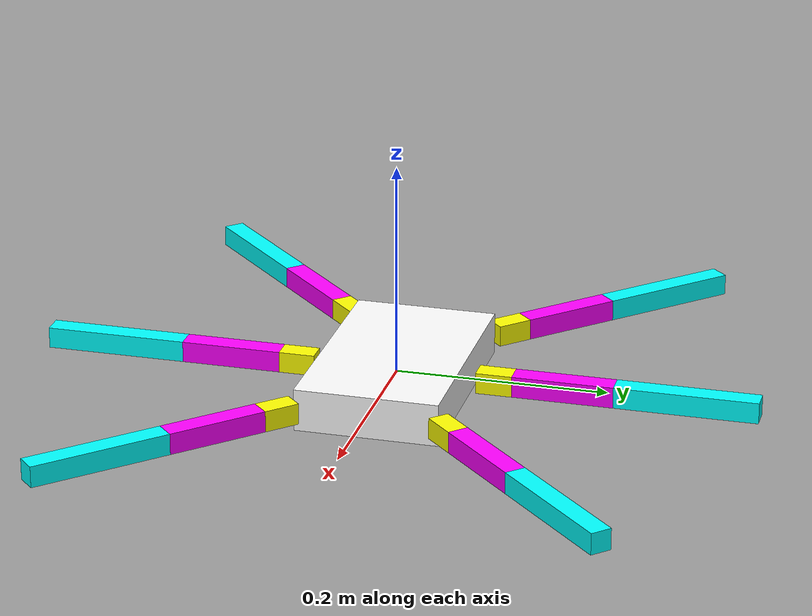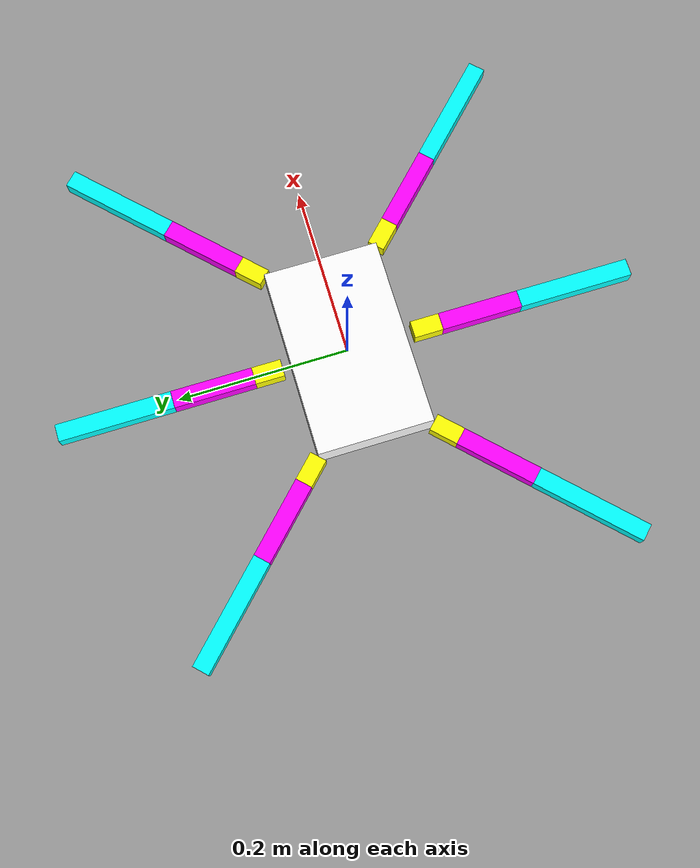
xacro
<?xml version="1.0"?>

<robot xmlns:xacro="http://www.ros.org/wiki/xacro" name="hexapod_leg">

<!-- Geometry and mass parameters -->
  <xacro:property name="body_width_s" value="0.135"/>
  <xacro:property name="body_width_b" value="0.155"/>
  <xacro:property name="body_length" value="0.220"/>
  <xacro:property name="body_heigth" value="0.04"/>
  <xacro:property name="L1_length" value="0.034"/>
  <xacro:property name="L2_length" value="0.095"/>
  <xacro:property name="L3_length" value="0.134"/>
  <xacro:property name="L_width" value="0.02"/>

  <xacro:property name="body_mass" value="0.3"/>
  <xacro:property name="L1_mass" value="0.158"/>
  <xacro:property name="L2_mass" value="0.034"/>
  <xacro:property name="L3_mass" value="0.102"/>

  <xacro:property name="max_angle" value="150"/>

  <xacro:macro name="default_inertial" params="mass">
    <inertial>
      <mass value="${mass}" />
      <inertia ixx="1.0" ixy="0.0" ixz="0.0"
        iyy="1.0" iyz="0.0"
        izz="1.0" />
      </inertial>
    </xacro:macro>

<!-- Build a body (thorax) -->
    <link name="base_link" />

    <joint name="base_joint" type="fixed">
      <parent link="base_link" />
      <child link="body" />
      <origin xyz="0 0 0" rpy="0 0 0" />
    </joint>

    <link name="body">
      <visual>
        <geometry>
          <box size="${body_length} ${body_width_s} ${body_heigth}"/>
        </geometry>
        <origin rpy="0 0 0" xyz="0 0 0"/>
        <material name="white">
          <color rgba="1 1 1 1"/>
        </material>
      </visual>
      <collision>
        <geometry>
          <box size="${body_length} ${body_width_s} ${body_heigth}"/>
        </geometry>
      </collision>
      <xacro:default_inertial mass="${body_mass}"/>
    </link>

<!-- Script for building a leg -->
    <xacro:macro name="leg" params="side num x y angle coxa_angle_sign">

    <link name="leg_center_${num}${side}" />

    <joint name="leg_center_joint_${side}${num}" type="fixed">
      <parent link="body"/>
      <child link="leg_center_${num}${side}"/>
      <origin rpy="0 0 ${angle}" xyz="${x} ${y} 0"/>
    </joint>

    <link name="coxa_${side}${num}">
      <visual>
        <geometry>
          <box size="${L1_length} ${L_width} ${L_width}"/>
        </geometry>
        <origin rpy="0 0 0" xyz="${L1_length/2} 0 0"/>
        <material name="yellow">
          <color rgba="255 255 0 1"/>
        </material>
      </visual>
      <collision>
        <geometry>
          <box size="${L1_length} ${L_width} ${L_width}"/>
        </geometry>
      </collision>
      <xacro:default_inertial mass="${L1_mass}"/>
    </link>

    <joint name="coxa_joint_${side}${num}" type="revolute">
      <parent link="leg_center_${num}${side}"/>
      <child link="coxa_${side}${num}"/>
      <axis xyz="0 0 ${coxa_angle_sign}"/>
      <origin rpy="0 0 0" xyz="0 0 0"/>
      <limit effort ="1000.0" lower="${radians(-max_angle)}" upper="${radians(max_angle)}" velocity="0.5"/>
    </joint>

    <link name="femur_${side}${num}">
      <visual>
        <geometry>
          <box size="${L2_length} ${L_width} ${L_width}"/>
        </geometry>
        <origin rpy="0 0 0" xyz="${L2_length/2} 0 0"/>
        <material name="green">
          <color rgba="255 0 255 1"/>
        </material>
      </visual>
      <collision>
        <geometry>
          <box size="${L2_length} ${L_width} ${L_width}"/>
        </geometry>
      </collision>
      <xacro:default_inertial mass="${L2_mass}"/>
    </link>

    <joint name="femur_joint_${side}${num}" type="revolute">
      <parent link="coxa_${side}${num}"/>
      <child link="femur_${side}${num}"/>
      <origin rpy="1.57 0 0" xyz="${L1_length} 0 0"/>
      <axis xyz="0 0 1"/>
      <limit effort ="1000.0" lower="${radians(-max_angle)}" upper="${radians(max_angle)}" velocity="0.5"/>
    </joint>

    <link name="tibia_${side}${num}">
      <visual>
        <geometry>
          <box size="${L3_length} ${L_width} ${L_width}"/>
        </geometry>
        <origin rpy="0 0 0" xyz="${L3_length/2} 0 0"/>
        <material name="blue">
          <color rgba="0 255 255 1"/>
        </material>
      </visual>
      <collision>
        <geometry>
          <box size="${L3_length} ${L_width} ${L_width}"/>
        </geometry>
      </collision>
      <xacro:default_inertial mass="${L3_mass}"/>
    </link>

    <joint name="tibia_joint_${side}${num}" type="revolute">
      <parent link="femur_${side}${num}"/>
      <child link="tibia_${side}${num}"/>
      <origin rpy="0 0 0" xyz="${L2_length} 0 0"/>
      <axis xyz="0 0 -1"/>
      <limit effort ="1000.0" lower="${radians(-max_angle)}" upper="${radians(max_angle)}" velocity="0.5"/>
    </joint>

    <link name="end_effector_${side}${num}"/>

     <joint name="end effector_joint_${side}${num}" type="fixed">
      <parent link="tibia_${side}${num}"/>
      <child link="end_effector_${side}${num}"/>
      <origin rpy="0 0 0" xyz="${L3_length} 0 0"/>
    </joint>

    </xacro:macro>

<!-- Building legs -->
    <xacro:leg side="R" num="1" x="${body_length/2}" y="${-body_width_s/2}" angle="${radians(-45)}" coxa_angle_sign="1"/>
    <xacro:leg side="R" num="2" x="0"                y="${-body_width_b/2}" angle="${radians(-90)}" coxa_angle_sign="1"/>
    <xacro:leg side="R" num="3" x="${-body_length/2}" y="${-body_width_s/2}" angle="${radians(-135)}" coxa_angle_sign="1"/>
    <xacro:leg side="L" num="1" x="${body_length/2}" y="${body_width_s/2}" angle="${radians(45)}" coxa_angle_sign="-1"/>
    <xacro:leg side="L" num="2" x="0"                y="${body_width_b/2}" angle="${radians(90)}" coxa_angle_sign="-1"/>
    <xacro:leg side="L" num="3" x="${-body_length/2}" y="${body_width_s/2}" angle="${radians(135)}" coxa_angle_sign="-1"/>

  </robot>
